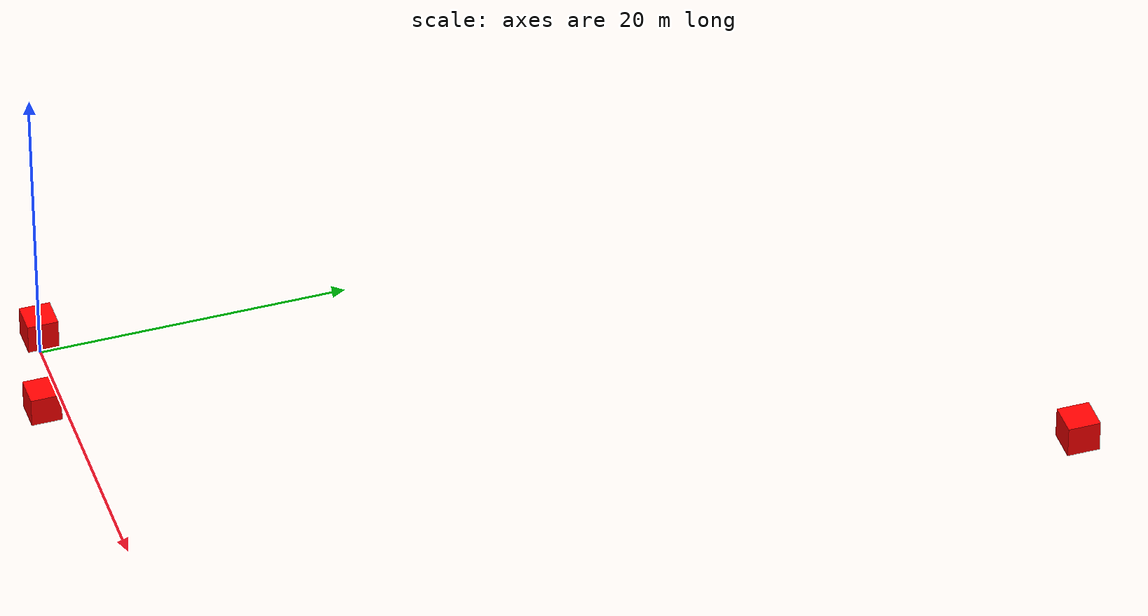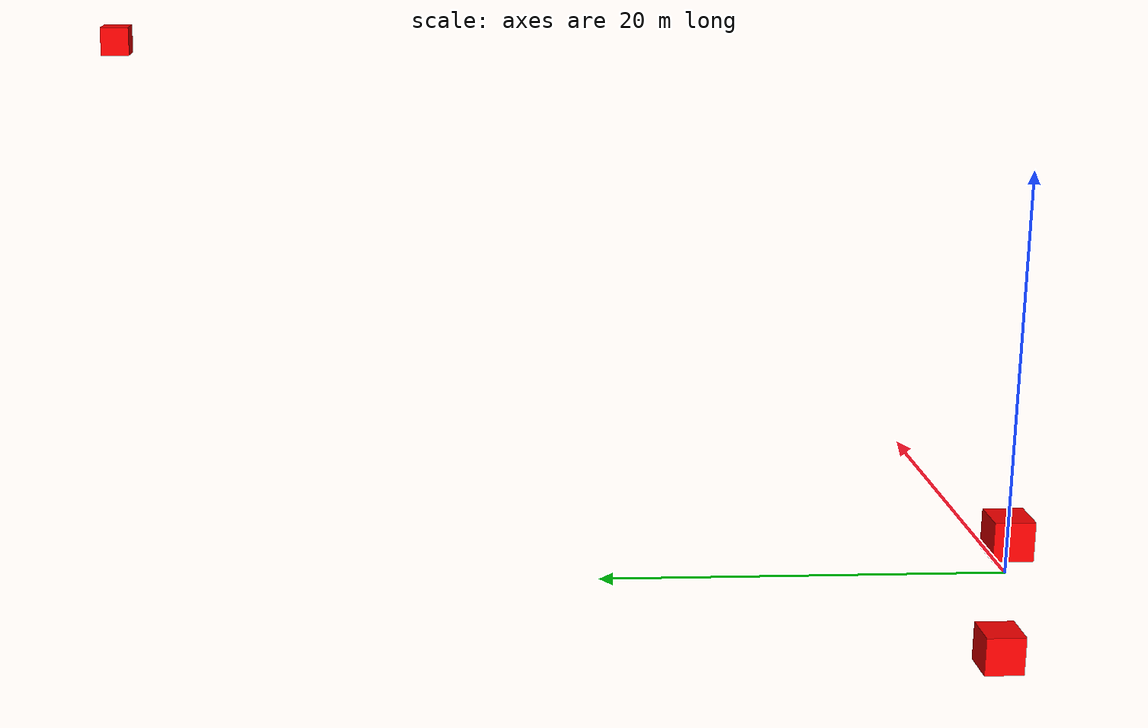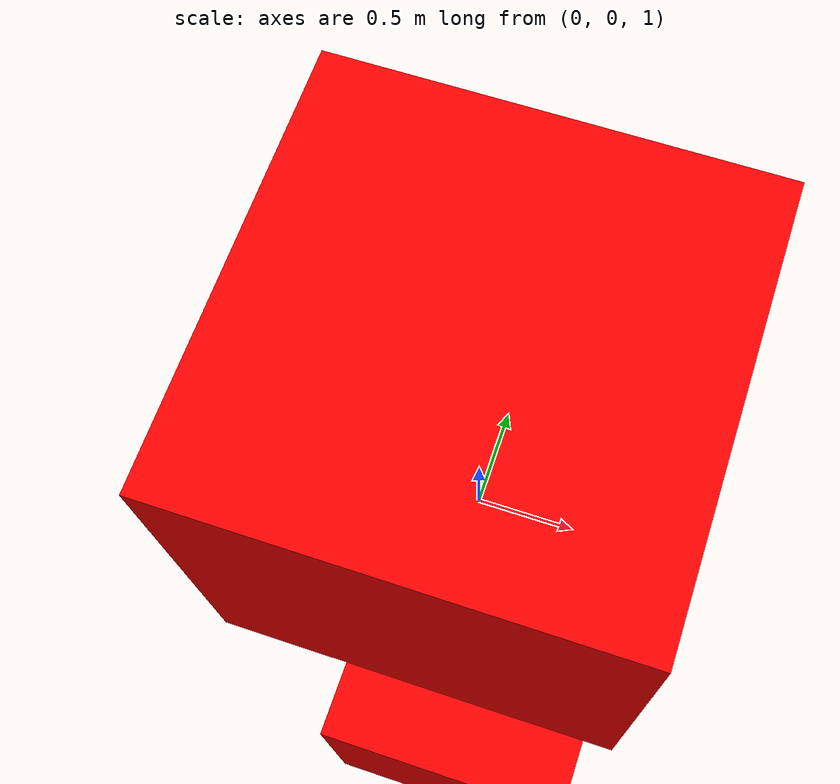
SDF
<?xml version="1.0" ?>
<sdf version="1.6">
  <world name="sea_storm_demo">
    <plugin
      filename="gz-sim-apply-link-wrench-system"
      name="gz::sim::systems::ApplyLinkWrench">
    </plugin>

    <gravity>0 0 0</gravity>

    <physics name="fast" type="ignored">
      <real_time_factor>0</real_time_factor>
    </physics>

    <plugin
      filename="gz-sim-physics-system"
      name="gz::sim::systems::Physics">
    </plugin>
    <plugin
      filename="gz-sim-user-commands-system"
      name="gz::sim::systems::UserCommands">
    </plugin>

    <plugin
      filename="gz-sim-wind-effects-system"
      name="gz::sim::systems::WindEffects">
      <force_approximation_scaling_factor>
        <!-- No wind below sea level -->
        <when zgt="0" zlt="5">0.2</when>  <!-- Transition layer -->
        <when zge="5">  <!-- Vortex-like winds that worsen with height -->
          <k>0.5</k>
          <px>0 0.01 0 0</px>
          <qy>0 0.01 0 0</qy>
          <rz>0 0 0.01 0.45</rz>
        </when>
      </force_approximation_scaling_factor>
      <horizontal>
        <magnitude>
          <time_for_rise>1</time_for_rise>
          <sin>
            <amplitude_percent>0.05</amplitude_percent>
            <period>60</period>
          </sin>
        </magnitude>
        <direction>
          <time_for_rise>1</time_for_rise>
          <sin>
            <amplitude>5</amplitude>
            <period>20</period>
          </sin>
        </direction>
      </horizontal>
    </plugin>

    <wind>
      <linear_velocity>50 50 0</linear_velocity>
    </wind>

    <model name="wind_below_surface">
      <pose>0 0 -5 0 0 0</pose>
      <enable_wind>true</enable_wind>
      <link name="box_below_surface">
        <pose>0 0 1 0 0 0</pose>
        <inertial>
          <mass>1</mass>
          <inertia>
            <ixx>0.667</ixx>
            <ixy>0</ixy>
            <ixz>0</ixz>
            <iyy>0.667</iyy>
            <iyz>0</iyz>
            <izz>0.667</izz>
          </inertia>
        </inertial>
        <collision name="collision">
          <geometry>
            <box>
              <size>2.0 2.0 2.0</size>
            </box>
          </geometry>
          <surface>
            <friction>
              <ode>
                <mu>0.0</mu>
                <mu2>0.0</mu2>
              </ode>
            </friction>
          </surface>
        </collision>
        <visual name="visual">
          <geometry>
            <box>
              <size>2.0 2.0 2.0</size>
            </box>
          </geometry>
          <material>
            <ambient>1.0 0.0 0.0 1</ambient>
            <diffuse>1.0 0.0 0.0 1</diffuse>
            <specular>1.0 0.0 0.0 1</specular>
          </material>
        </visual>
      </link>
    </model>

    <model name="wind_above_surface">
      <pose>0 0 1 0 0 0</pose>
      <link name="box_above_surface">
        <enable_wind>true</enable_wind>
        <pose>0 0 1 0 0 0</pose>
        <inertial>
          <mass>1</mass>
          <inertia>
            <ixx>0.667</ixx>
            <ixy>0</ixy>
            <ixz>0</ixz>
            <iyy>0.667</iyy>
            <iyz>0</iyz>
            <izz>0.667</izz>
          </inertia>
        </inertial>
        <collision name="collision">
          <geometry>
            <box>
              <size>2.0 2.0 2.0</size>
            </box>
          </geometry>
          <surface>
            <friction>
              <ode>
                <mu>0.0</mu>
                <mu2>0.0</mu2>
              </ode>
            </friction>
          </surface>
        </collision>
        <visual name="visual">
          <geometry>
            <box>
              <size>2.0 2.0 2.0</size>
            </box>
          </geometry>
          <material>
            <ambient>1.0 0.0 0.0 1</ambient>
            <diffuse>1.0 0.0 0.0 1</diffuse>
            <specular>1.0 0.0 0.0 1</specular>
          </material>
        </visual>
      </link>
    </model>

    <model name="wind_up_high">
      <pose>50 50 20 0 0 0</pose>
      <link name="box_up_high">
        <enable_wind>true</enable_wind>
        <pose>0 0 1 0 0 0</pose>
        <inertial>
          <mass>1</mass>
          <inertia>
            <ixx>0.667</ixx>
            <ixy>0</ixy>
            <ixz>0</ixz>
            <iyy>0.667</iyy>
            <iyz>0</iyz>
            <izz>0.667</izz>
          </inertia>
        </inertial>
        <collision name="collision">
          <geometry>
            <box>
              <size>2.0 2.0 2.0</size>
            </box>
          </geometry>
          <surface>
            <friction>
              <ode>
                <mu>0.0</mu>
                <mu2>0.0</mu2>
              </ode>
            </friction>
          </surface>
        </collision>
        <visual name="visual">
          <geometry>
            <box>
              <size>2.0 2.0 2.0</size>
            </box>
          </geometry>
          <material>
            <ambient>1.0 0.0 0.0 1</ambient>
            <diffuse>1.0 0.0 0.0 1</diffuse>
            <specular>1.0 0.0 0.0 1</specular>
          </material>
        </visual>
      </link>
    </model>
  </world>
</sdf>
